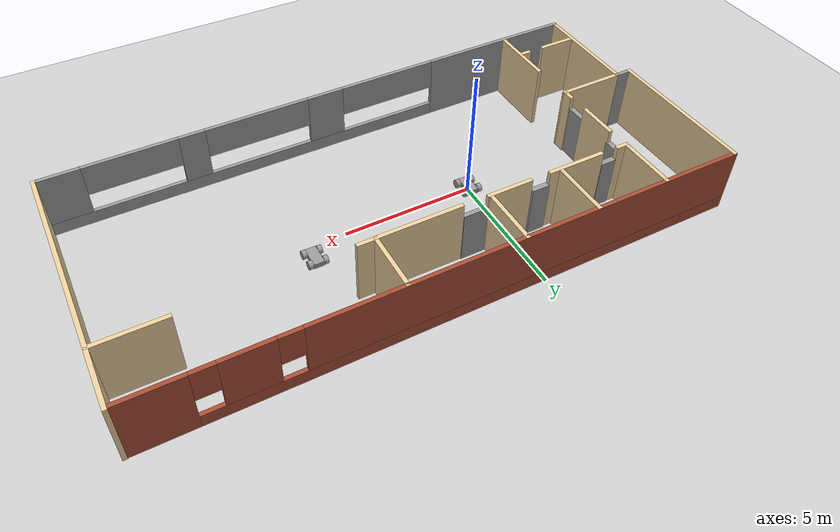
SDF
<sdf version="1.6">
 <world name="default">
  <plugin name="hello" filename="libhello.so"/>
  <light name="sun" type="directional">
   <pose>0 0 10 0 -0 0</pose>
   <diffuse>0.8 0.8 0.8 1</diffuse>
   <specular>0.2 0.2 0.2 1</specular>
   <attenuation>
    <range>1000</range>
    <constant>0.9</constant>
    <linear>0.01</linear>
    <quadratic>0.001</quadratic>
   </attenuation>
   <direction>-0.5 0.1 -0.9</direction>
  </light>
  <model name="ground_plane">
   <static>1</static>
   <link name="link">
    <collision name="collision">
     <geometry><plane><normal>0 0 1</normal><size>100 100</size></plane></geometry>
     <surface>
      <contact><collide_bitmask>65535</collide_bitmask></contact>
      <friction><ode><mu>100</mu><mu2>50</mu2></ode></friction>
     </surface>
    </collision>
    <visual name="visual">
     <cast_shadows>0</cast_shadows>
     <geometry><plane><normal>0 0 1</normal><size>100 100</size></plane></geometry>
     <material>
      <script><uri>file://media/materials/scripts/gazebo.material</uri><name>Gazebo/Grey</name></script>
     </material>
    </visual>
   </link>
  </model>
  <gravity>0 0 -9.8</gravity>
  <magnetic_field>6e-06 2.3e-05 -4.2e-05</magnetic_field>
  <atmosphere type="adiabatic"/>
  <physics name="default_physics" default="0" type="ode">
   <max_step_size>0.001</max_step_size>
   <real_time_factor>1</real_time_factor>
   <real_time_update_rate>1000</real_time_update_rate>
  </physics>
  <scene><ambient>0.4 0.4 0.4 1</ambient><background>0.7 0.7 0.7 1</background><shadows>1</shadows></scene>
  <spherical_coordinates>
   <surface_model>EARTH_WGS84</surface_model>
   <latitude_deg>0</latitude_deg>
   <longitude_deg>0</longitude_deg>
   <elevation>0</elevation>
   <heading_deg>0</heading_deg>
  </spherical_coordinates>
  <model name="model_P1">
   <link name="link_1">
    <pose>-0.004 0.004 0 0 -0 0</pose>
    <inertial>
     <mass>1</mass>
     <inertia>
      <ixx>0.166667</ixx>
      <ixy>0</ixy>
      <ixz>0</ixz>
      <iyy>0.166667</iyy>
      <iyz>0</iyz>
      <izz>0.166667</izz>
     </inertia>
    </inertial>
    <visual name="visual">
     <geometry><box><size>0.4 0.8 0.2</size></box></geometry>
     <material>
      <lighting>1</lighting>
      <script><uri>file://media/materials/scripts/gazebo.material</uri><name>Gazebo/Grey</name></script>
      <shader type="pixel"><normal_map>__default__</normal_map></shader>
      <ambient>0.3 0.3 0.3 1</ambient>
      <diffuse>0.7 0.7 0.7 1</diffuse>
      <specular>0.01 0.01 0.01 1</specular>
      <emissive>0 0 0 1</emissive>
     </material>
    </visual>
    <collision name="collision">
     <geometry><box><size>0.4 0.8 0.2</size></box></geometry>
     <surface>
      <friction>
       <ode><mu>1</mu><mu2>1</mu2><fdir1>0 0 0</fdir1><slip1>0</slip1><slip2>0</slip2></ode>
       <torsional>
        <coefficient>1</coefficient>
        <patch_radius>0</patch_radius>
        <surface_radius>0</surface_radius>
        <use_patch_radius>1</use_patch_radius>
        <ode><slip>0</slip></ode>
       </torsional>
      </friction>
      <bounce><restitution_coefficient>0</restitution_coefficient><threshold>1e+06</threshold></bounce>
      <contact>
       <collide_without_contact>0</collide_without_contact>
       <collide_without_contact_bitmask>1</collide_without_contact_bitmask>
       <collide_bitmask>1</collide_bitmask>
       <ode>
        <soft_cfm>0</soft_cfm>
        <soft_erp>0.2</soft_erp>
        <kp>1e+13</kp>
        <kd>1</kd>
        <max_vel>0.01</max_vel>
        <min_depth>0</min_depth>
       </ode>
       <bullet>
        <split_impulse>1</split_impulse>
        <split_impulse_penetration_threshold>-0.01</split_impulse_penetration_threshold>
        <soft_cfm>0</soft_cfm>
        <soft_erp>0.2</soft_erp>
        <kp>1e+13</kp>
        <kd>1</kd>
       </bullet>
      </contact>
     </surface>
    </collision>
   </link>
   <link name="link_3">
    <pose>0.276 -0.276 0 1.5707 0 1.5707</pose>
    <inertial>
     <mass>1</mass>
     <inertia><ixx>0.145833</ixx><ixy>0</ixy><ixz>0</ixz><iyy>0.145833</iyy><iyz>0</iyz><izz>0.125</izz></inertia>
     <pose>0 0 0.5 1.5707 -0 0</pose>
    </inertial>
    <visual name="visual">
     <geometry><cylinder><radius>0.16</radius><length>0.16</length></cylinder></geometry>
     <material>
      <lighting>1</lighting>
      <script><uri>file://media/materials/scripts/gazebo.material</uri><name>Gazebo/Grey</name></script>
      <shader type="pixel"><normal_map>__default__</normal_map></shader>
      <ambient>0.3 0.3 0.3 1</ambient>
      <diffuse>0.7 0.7 0.7 1</diffuse>
      <specular>0.01 0.01 0.01 1</specular>
      <emissive>0 0 0 1</emissive>
     </material>
    </visual>
    <collision name="collision">
     <geometry><cylinder><radius>0.16</radius><length>0.16</length></cylinder></geometry>
     <surface>
      <friction>
       <ode><mu>1</mu><mu2>1</mu2><fdir1>0 0 0</fdir1><slip1>0</slip1><slip2>0</slip2></ode>
       <torsional>
        <coefficient>1</coefficient>
        <patch_radius>0</patch_radius>
        <surface_radius>0</surface_radius>
        <use_patch_radius>1</use_patch_radius>
        <ode><slip>0</slip></ode>
       </torsional>
      </friction>
      <bounce><restitution_coefficient>0</restitution_coefficient><threshold>1e+06</threshold></bounce>
      <contact>
       <collide_without_contact>0</collide_without_contact>
       <collide_without_contact_bitmask>1</collide_without_contact_bitmask>
       <collide_bitmask>1</collide_bitmask>
       <ode>
        <soft_cfm>0</soft_cfm>
        <soft_erp>0.2</soft_erp>
        <kp>1e+13</kp>
        <kd>1</kd>
        <max_vel>0.01</max_vel>
        <min_depth>0</min_depth>
       </ode>
       <bullet>
        <split_impulse>1</split_impulse>
        <split_impulse_penetration_threshold>-0.01</split_impulse_penetration_threshold>
        <soft_cfm>0</soft_cfm>
        <soft_erp>0.2</soft_erp>
        <kp>1e+13</kp>
        <kd>1</kd>
       </bullet>
      </contact>
     </surface>
    </collision>
   </link>
   <link name="link_3_clone">
    <pose>0.275 0.26 0 1.5707 0 1.5707</pose>
    <inertial>
     <mass>1</mass>
     <inertia><ixx>0.145833</ixx><ixy>0</ixy><ixz>0</ixz><iyy>0.145833</iyy><iyz>0</iyz><izz>0.125</izz></inertia>
     <pose>0 0 0.2 1.5707 1.5707 -0</pose>
    </inertial>
    <visual name="visual">
     <geometry><cylinder><radius>0.16</radius><length>0.16</length></cylinder></geometry>
     <material>
      <lighting>1</lighting>
      <script><uri>file://media/materials/scripts/gazebo.material</uri><name>Gazebo/Grey</name></script>
      <shader type="pixel"><normal_map>__default__</normal_map></shader>
      <ambient>0.3 0.3 0.3 1</ambient>
      <diffuse>0.7 0.7 0.7 1</diffuse>
      <specular>0.01 0.01 0.01 1</specular>
      <emissive>0 0 0 1</emissive>
     </material>
    </visual>
    <collision name="collision">
     <geometry><cylinder><radius>0.16</radius><length>0.16</length></cylinder></geometry>
     <surface>
      <friction>
       <ode><mu>1</mu><mu2>1</mu2><fdir1>0 0 0</fdir1><slip1>0</slip1><slip2>0</slip2></ode>
       <torsional>
        <coefficient>1</coefficient>
        <patch_radius>0</patch_radius>
        <surface_radius>0</surface_radius>
        <use_patch_radius>1</use_patch_radius>
        <ode><slip>0</slip></ode>
       </torsional>
      </friction>
      <bounce><restitution_coefficient>0</restitution_coefficient><threshold>1e+06</threshold></bounce>
      <contact>
       <collide_without_contact>0</collide_without_contact>
       <collide_without_contact_bitmask>1</collide_without_contact_bitmask>
       <collide_bitmask>1</collide_bitmask>
       <ode>
        <soft_cfm>0</soft_cfm>
        <soft_erp>0.2</soft_erp>
        <kp>1e+13</kp>
        <kd>1</kd>
        <max_vel>0.01</max_vel>
        <min_depth>0</min_depth>
       </ode>
       <bullet>
        <split_impulse>1</split_impulse>
        <split_impulse_penetration_threshold>-0.01</split_impulse_penetration_threshold>
        <soft_cfm>0</soft_cfm>
        <soft_erp>0.2</soft_erp>
        <kp>1e+13</kp>
        <kd>1</kd>
       </bullet>
      </contact>
     </surface>
    </collision>
   </link>
   <link name="link_3_clone_clone">
    <pose>-0.285 -0.26 0 1.5707 0 1.5707</pose>
    <inertial>
     <mass>1</mass>
     <inertia><ixx>0.145833</ixx><ixy>0</ixy><ixz>0</ixz><iyy>0.145833</iyy><iyz>0</iyz><izz>0.125</izz></inertia>
     <pose>0 0 0.2 1.5707 1.5707 -0</pose>
    </inertial>
    <visual name="visual">
     <geometry><cylinder><radius>0.16</radius><length>0.16</length></cylinder></geometry>
     <material>
      <lighting>1</lighting>
      <script><uri>file://media/materials/scripts/gazebo.material</uri><name>Gazebo/Grey</name></script>
      <shader type="pixel"><normal_map>__default__</normal_map></shader>
      <ambient>0.3 0.3 0.3 1</ambient>
      <diffuse>0.7 0.7 0.7 1</diffuse>
      <specular>0.01 0.01 0.01 1</specular>
      <emissive>0 0 0 1</emissive>
     </material>
    </visual>
    <collision name="collision">
     <geometry><cylinder><radius>0.16</radius><length>0.16</length></cylinder></geometry>
     <surface>
      <friction>
       <ode><mu>1</mu><mu2>1</mu2><fdir1>0 0 0</fdir1><slip1>0</slip1><slip2>0</slip2></ode>
       <torsional>
        <coefficient>1</coefficient>
        <patch_radius>0</patch_radius>
        <surface_radius>0</surface_radius>
        <use_patch_radius>1</use_patch_radius>
        <ode><slip>0</slip></ode>
       </torsional>
      </friction>
      <bounce><restitution_coefficient>0</restitution_coefficient><threshold>1e+06</threshold></bounce>
      <contact>
       <collide_without_contact>0</collide_without_contact>
       <collide_without_contact_bitmask>1</collide_without_contact_bitmask>
       <collide_bitmask>1</collide_bitmask>
       <ode>
        <soft_cfm>0</soft_cfm>
        <soft_erp>0.2</soft_erp>
        <kp>1e+13</kp>
        <kd>1</kd>
        <max_vel>0.01</max_vel>
        <min_depth>0</min_depth>
       </ode>
       <bullet>
        <split_impulse>1</split_impulse>
        <split_impulse_penetration_threshold>-0.01</split_impulse_penetration_threshold>
        <soft_cfm>0</soft_cfm>
        <soft_erp>0.2</soft_erp>
        <kp>1e+13</kp>
        <kd>1</kd>
       </bullet>
      </contact>
     </surface>
    </collision>
   </link>
   <link name="link_3_clone_clone_0">
    <pose>-0.285 0.26 0 1.56531 -0 1.5707</pose>
    <inertial>
     <mass>1</mass>
     <inertia><ixx>0.145833</ixx><ixy>0</ixy><ixz>0</ixz><iyy>0.145833</iyy><iyz>0</iyz><izz>0.125</izz></inertia>
     <pose>0 0 0.2 1.5707 1.5707 -0</pose>
    </inertial>
    <visual name="visual">
     <geometry><cylinder><radius>0.16</radius><length>0.16</length></cylinder></geometry>
     <material>
      <lighting>1</lighting>
      <script><uri>file://media/materials/scripts/gazebo.material</uri><name>Gazebo/Grey</name></script>
      <shader type="pixel"><normal_map>__default__</normal_map></shader>
      <ambient>0.3 0.3 0.3 1</ambient>
      <diffuse>0.7 0.7 0.7 1</diffuse>
      <specular>0.01 0.01 0.01 1</specular>
      <emissive>0 0 0 1</emissive>
     </material>
    </visual>
    <collision name="collision">
     <geometry><cylinder><radius>0.16</radius><length>0.16</length></cylinder></geometry>
     <surface>
      <friction>
       <ode><mu>1</mu><mu2>1</mu2><fdir1>0 0 0</fdir1><slip1>0</slip1><slip2>0</slip2></ode>
       <torsional>
        <coefficient>1</coefficient>
        <patch_radius>0</patch_radius>
        <surface_radius>0</surface_radius>
        <use_patch_radius>1</use_patch_radius>
        <ode><slip>0</slip></ode>
       </torsional>
      </friction>
      <bounce><restitution_coefficient>0</restitution_coefficient><threshold>1e+06</threshold></bounce>
      <contact>
       <collide_without_contact>0</collide_without_contact>
       <collide_without_contact_bitmask>1</collide_without_contact_bitmask>
       <collide_bitmask>1</collide_bitmask>
       <ode>
        <soft_cfm>0</soft_cfm>
        <soft_erp>0.2</soft_erp>
        <kp>1e+13</kp>
        <kd>1</kd>
        <max_vel>0.01</max_vel>
        <min_depth>0</min_depth>
       </ode>
       <bullet>
        <split_impulse>1</split_impulse>
        <split_impulse_penetration_threshold>-0.01</split_impulse_penetration_threshold>
        <soft_cfm>0</soft_cfm>
        <soft_erp>0.2</soft_erp>
        <kp>1e+13</kp>
        <kd>1</kd>
       </bullet>
      </contact>
     </surface>
    </collision>
   </link>
   <joint name="link_1_JOINT_1" type="revolute">
    <parent>link_1</parent>
    <child>link_3</child>
    <pose>0 0 0 -0.06 0 0</pose>
    <axis>
     <xyz>0 0.01 1</xyz>
     <use_parent_model_frame>0</use_parent_model_frame>
     <limit>
      <lower>-1.79769e+308</lower>
      <upper>1.79769e+308</upper>
      <effort>-1</effort>
      <velocity>-1</velocity>
     </limit>
     <dynamics>
      <spring_reference>0</spring_reference>
      <spring_stiffness>0</spring_stiffness>
      <damping>0</damping>
      <friction>0</friction>
     </dynamics>
    </axis>
    <physics>
     <ode><limit><cfm>0</cfm><erp>0.2</erp></limit><suspension><cfm>0</cfm><erp>0.2</erp></suspension></ode>
    </physics>
   </joint>
   <joint name="link_1_JOINT_2" type="revolute">
    <parent>link_1</parent>
    <child>link_3_clone</child>
    <axis>
     <xyz>0 0 1</xyz>
     <use_parent_model_frame>0</use_parent_model_frame>
     <limit>
      <lower>-1.79769e+308</lower>
      <upper>1.79769e+308</upper>
      <effort>-1</effort>
      <velocity>-1</velocity>
     </limit>
     <dynamics>
      <spring_reference>0</spring_reference>
      <spring_stiffness>0</spring_stiffness>
      <damping>0</damping>
      <friction>0</friction>
     </dynamics>
    </axis>
    <physics>
     <ode><limit><cfm>0</cfm><erp>0.2</erp></limit><suspension><cfm>0</cfm><erp>0.2</erp></suspension></ode>
    </physics>
   </joint>
   <joint name="link_1_JOINT_3" type="revolute">
    <parent>link_1</parent>
    <child>link_3_clone_clone</child>
    <axis>
     <xyz>0 0 1</xyz>
     <use_parent_model_frame>0</use_parent_model_frame>
     <limit>
      <lower>-1.79769e+308</lower>
      <upper>1.79769e+308</upper>
      <effort>-1</effort>
      <velocity>-1</velocity>
     </limit>
     <dynamics>
      <spring_reference>0</spring_reference>
      <spring_stiffness>0</spring_stiffness>
      <damping>0</damping>
      <friction>0</friction>
     </dynamics>
    </axis>
    <physics>
     <ode><limit><cfm>0</cfm><erp>0.2</erp></limit><suspension><cfm>0</cfm><erp>0.2</erp></suspension></ode>
    </physics>
   </joint>
   <joint name="link_1_JOINT_4" type="revolute">
    <parent>link_1</parent>
    <child>link_3_clone_clone_0</child>
    <axis>
     <xyz>0 0 1</xyz>
     <use_parent_model_frame>0</use_parent_model_frame>
     <limit>
      <lower>-1.79769e+308</lower>
      <upper>1.79769e+308</upper>
      <effort>-1</effort>
      <velocity>-1</velocity>
     </limit>
     <dynamics>
      <spring_reference>0</spring_reference>
      <spring_stiffness>0</spring_stiffness>
      <damping>0</damping>
      <friction>0</friction>
     </dynamics>
    </axis>
    <physics>
     <ode><limit><cfm>0</cfm><erp>0.2</erp></limit><suspension><cfm>0</cfm><erp>0.2</erp></suspension></ode>
    </physics>
   </joint>
   <static>0</static>
   <pose>0.004 -0.004 0.2 0 -0 0</pose>
  </model>
  <model name="structureP1">
   <pose>3.27597 0.077317 0 0 -0 0</pose>
   <link name="Door_0">
    <collision name="Door_0_Collision">
     <geometry><box><size>0.733829 0.2 2</size></box></geometry>
     <pose>0 0 1 0 -0 0</pose>
    </collision>
    <visual name="Door_0_Visual">
     <pose>0 0 1 0 -0 0</pose>
     <geometry><box><size>0.733829 0.2 2</size></box></geometry>
     <material>
      <script><uri>file://media/materials/scripts/gazebo.material</uri><name>Gazebo/Grey</name></script>
     </material>
    </visual>
    <pose>-7.86654 0.041822 0 0 -0 1.57283</pose>
   </link>
   <link name="Door_1">
    <collision name="Door_1_Collision">
     <geometry><box><size>0.59486 0.2 2</size></box></geometry>
     <pose>0 0 1 0 -0 0</pose>
    </collision>
    <visual name="Door_1_Visual">
     <pose>0 0 1 0 -0 0</pose>
     <geometry><box><size>0.59486 0.2 2</size></box></geometry>
     <material>
      <script><uri>file://media/materials/scripts/gazebo.material</uri><name>Gazebo/Grey</name></script>
     </material>
    </visual>
    <pose>-7.14463 2.69769 0 0 -0 0</pose>
   </link>
   <link name="Door_2">
    <collision name="Door_2_Collision">
     <geometry><box><size>0.676231 0.2 2</size></box></geometry>
     <pose>0 0 1 0 -0 0</pose>
    </collision>
    <visual name="Door_2_Visual">
     <pose>0 0 1 0 -0 0</pose>
     <geometry><box><size>0.676231 0.2 2</size></box></geometry>
     <material>
      <script><uri>file://media/materials/scripts/gazebo.material</uri><name>Gazebo/Grey</name></script>
     </material>
    </visual>
    <pose>-4.28798 2.71288 0 0 -0 0</pose>
   </link>
   <link name="Door_3">
    <collision name="Door_3_Collision">
     <geometry><box><size>0.9 0.17 2</size></box></geometry>
     <pose>0 0 1 0 -0 0</pose>
    </collision>
    <visual name="Door_3_Visual">
     <pose>0 0 1 0 -0 0</pose>
     <geometry><box><size>0.9 0.17 2</size></box></geometry>
     <material>
      <script><uri>file://media/materials/scripts/gazebo.material</uri><name>Gazebo/Grey</name></script>
     </material>
    </visual>
    <pose>-1.70955 2.70271 0 0 -0 0</pose>
   </link>
   <link name="Door_4">
    <collision name="Door_4_Collision">
     <geometry><box><size>0.787358 0.2 2</size></box></geometry>
     <pose>0 0 1 0 -0 0</pose>
    </collision>
    <visual name="Door_4_Visual">
     <pose>0 0 1 0 -0 0</pose>
     <geometry><box><size>0.787358 0.2 2</size></box></geometry>
     <material>
      <script><uri>file://media/materials/scripts/gazebo.material</uri><name>Gazebo/Grey</name></script>
     </material>
    </visual>
    <pose>-7.84405 2.2616 0 0 0 -1.55798</pose>
   </link>
   <link name="Wall_0">
    <pose>-0.049796 4.83077 0 0 -0 3.14159</pose>
    <visual name="Wall_0_Visual_0">
     <pose>-9.78293 0 1.25 0 -0 0</pose>
     <geometry><box><size>2.18414 0.15 2.5</size></box></geometry>
     <material>
      <script><uri>file://media/materials/scripts/gazebo.material</uri><name>Gazebo/Bricks</name></script>
      <ambient>1 1 1 1</ambient>
     </material>
     <meta><layer>0</layer></meta>
    </visual>
    <collision name="Wall_0_Collision_0">
     <geometry><box><size>2.18414 0.15 2.5</size></box></geometry>
     <pose>-9.78293 0 1.25 0 -0 0</pose>
    </collision>
    <visual name="Wall_0_Visual_1">
     <pose>1.09207 0 0.25 0 -0 0</pose>
     <geometry><box><size>19.5659 0.15 0.5</size></box></geometry>
     <material>
      <script><uri>file://media/materials/scripts/gazebo.material</uri><name>Gazebo/Bricks</name></script>
      <ambient>1 1 1 1</ambient>
     </material>
     <meta><layer>0</layer></meta>
    </visual>
    <collision name="Wall_0_Collision_1">
     <geometry><box><size>19.5659 0.15 0.5</size></box></geometry>
     <pose>1.09207 0 0.25 0 -0 0</pose>
    </collision>
    <visual name="Wall_0_Visual_2">
     <pose>-7.00793 0 1.5 0 -0 0</pose>
     <geometry><box><size>1.76586 0.15 2</size></box></geometry>
     <material>
      <script><uri>file://media/materials/scripts/gazebo.material</uri><name>Gazebo/Bricks</name></script>
      <ambient>1 1 1 1</ambient>
     </material>
     <meta><layer>0</layer></meta>
    </visual>
    <collision name="Wall_0_Collision_2">
     <geometry><box><size>1.76586 0.15 2</size></box></geometry>
     <pose>-7.00793 0 1.5 0 -0 0</pose>
    </collision>
    <visual name="Wall_0_Visual_3">
     <pose>2.775 0 1.5 0 -0 0</pose>
     <geometry><box><size>16.2 0.15 2</size></box></geometry>
     <material>
      <script><uri>file://media/materials/scripts/gazebo.material</uri><name>Gazebo/Bricks</name></script>
      <ambient>1 1 1 1</ambient>
     </material>
     <meta><layer>0</layer></meta>
    </visual>
    <collision name="Wall_0_Collision_3">
     <geometry><box><size>16.2 0.15 2</size></box></geometry>
     <pose>2.775 0 1.5 0 -0 0</pose>
    </collision>
    <visual name="Wall_0_Visual_4">
     <pose>-8.29086 0 1.9 0 -0 0</pose>
     <geometry><box><size>0.8 0.15 1.2</size></box></geometry>
     <material>
      <script><uri>file://media/materials/scripts/gazebo.material</uri><name>Gazebo/Bricks</name></script>
      <ambient>1 1 1 1</ambient>
     </material>
     <meta><layer>0</layer></meta>
    </visual>
    <collision name="Wall_0_Collision_4">
     <geometry><box><size>0.8 0.15 1.2</size></box></geometry>
     <pose>-8.29086 0 1.9 0 -0 0</pose>
    </collision>
    <visual name="Wall_0_Visual_5">
     <pose>-5.72499 0 1.9 0 -0 0</pose>
     <geometry><box><size>0.8 0.15 1.2</size></box></geometry>
     <material>
      <script><uri>file://media/materials/scripts/gazebo.material</uri><name>Gazebo/Bricks</name></script>
      <ambient>1 1 1 1</ambient>
     </material>
     <meta><layer>0</layer></meta>
    </visual>
    <collision name="Wall_0_Collision_5">
     <geometry><box><size>0.8 0.15 1.2</size></box></geometry>
     <pose>-5.72499 0 1.9 0 -0 0</pose>
    </collision>
   </link>
   <link name="Wall_1">
    <collision name="Wall_1_Collision">
     <geometry><box><size>5.71967 0.15 2.5</size></box></geometry>
     <pose>0 0 1.25 0 -0 0</pose>
    </collision>
    <visual name="Wall_1_Visual">
     <pose>0 0 1.25 0 -0 0</pose>
     <geometry><box><size>5.71967 0.15 2.5</size></box></geometry>
     <material>
      <script><uri>file://media/materials/scripts/gazebo.material</uri><name>Gazebo/Grey</name></script>
      <ambient>0.921569 0.807843 0.615686 1</ambient>
     </material>
     <meta><layer>0</layer></meta>
    </visual>
    <pose>-10.8498 2.03077 0 0 0 -1.56533</pose>
   </link>
   <link name="Wall_11">
    <collision name="Wall_11_Collision">
     <geometry><box><size>0.5 0.15 2.5</size></box></geometry>
     <pose>0 0 1.25 0 -0 0</pose>
    </collision>
    <visual name="Wall_11_Visual">
     <pose>0 0 1.25 0 -0 0</pose>
     <geometry><box><size>0.5 0.15 2.5</size></box></geometry>
     <material>
      <script><uri>file://media/materials/scripts/gazebo.material</uri><name>Gazebo/Grey</name></script>
      <ambient>0.921569 0.807843 0.615686 1</ambient>
     </material>
     <meta><layer>0</layer></meta>
    </visual>
    <pose>-7.94299 -3.62813 0 0 -0 0</pose>
   </link>
   <link name="Wall_13">
    <collision name="Wall_13_Collision">
     <geometry><box><size>2.58183 0.15 2.5</size></box></geometry>
     <pose>0 0 1.25 0 -0 0</pose>
    </collision>
    <visual name="Wall_13_Visual">
     <pose>0 0 1.25 0 -0 0</pose>
     <geometry><box><size>2.58183 0.15 2.5</size></box></geometry>
     <material>
      <script><uri>file://media/materials/scripts/gazebo.material</uri><name>Gazebo/Grey</name></script>
      <ambient>0.921569 0.807843 0.615686 1</ambient>
     </material>
     <meta><layer>0</layer></meta>
    </visual>
    <pose>-9.01867 -0.748904 0 0 -0 0.004206</pose>
   </link>
   <link name="Wall_15">
    <collision name="Wall_15_Collision">
     <geometry><box><size>0.5 0.15 2.5</size></box></geometry>
     <pose>0 0 1.25 0 -0 0</pose>
    </collision>
    <visual name="Wall_15_Visual">
     <pose>0 0 1.25 0 -0 0</pose>
     <geometry><box><size>0.5 0.15 2.5</size></box></geometry>
     <material>
      <script><uri>file://media/materials/scripts/gazebo.material</uri><name>Gazebo/Grey</name></script>
      <ambient>0.921569 0.807843 0.615686 1</ambient>
     </material>
     <meta><layer>0</layer></meta>
    </visual>
    <pose>-7.80276 -0.579018 0 0 -0 1.5708</pose>
   </link>
   <link name="Wall_17">
    <collision name="Wall_17_Collision">
     <geometry><box><size>1.5 0.15 2.5</size></box></geometry>
     <pose>0 0 1.25 0 -0 0</pose>
    </collision>
    <visual name="Wall_17_Visual">
     <pose>0 0 1.25 0 -0 0</pose>
     <geometry><box><size>1.5 0.15 2.5</size></box></geometry>
     <material>
      <script><uri>file://media/materials/scripts/gazebo.material</uri><name>Gazebo/Grey</name></script>
      <ambient>0.921569 0.807843 0.615686 1</ambient>
     </material>
     <meta><layer>0</layer></meta>
    </visual>
    <pose>-7.82409 1.16553 0 0 -0 1.5708</pose>
   </link>
   <link name="Wall_19">
    <collision name="Wall_19_Collision">
     <geometry><box><size>2.25 0.15 2.5</size></box></geometry>
     <pose>0 0 1.25 0 -0 0</pose>
    </collision>
    <visual name="Wall_19_Visual">
     <pose>0 0 1.25 0 -0 0</pose>
     <geometry><box><size>2.25 0.15 2.5</size></box></geometry>
     <material>
      <script><uri>file://media/materials/scripts/gazebo.material</uri><name>Gazebo/Grey</name></script>
      <ambient>0.921569 0.807843 0.615686 1</ambient>
     </material>
     <meta><layer>0</layer></meta>
    </visual>
    <pose>-7.86075 3.75644 0 0 -0 1.5708</pose>
   </link>
   <link name="Wall_2">
    <collision name="Wall_2_Collision">
     <geometry><box><size>0.75 0.15 2.5</size></box></geometry>
     <pose>0 0 1.25 0 -0 0</pose>
    </collision>
    <visual name="Wall_2_Visual">
     <pose>0 0 1.25 0 -0 0</pose>
     <geometry><box><size>0.75 0.15 2.5</size></box></geometry>
     <material>
      <script><uri>file://media/materials/scripts/gazebo.material</uri><name>Gazebo/Grey</name></script>
      <ambient>1 1 1 1</ambient>
     </material>
     <meta><layer>0</layer></meta>
    </visual>
    <pose>-10.5346 -0.754018 0 0 -0 0</pose>
   </link>
   <link name="Wall_21">
    <collision name="Wall_21_Collision">
     <geometry><box><size>0.5 0.15 2.5</size></box></geometry>
     <pose>0 0 1.25 0 -0 0</pose>
    </collision>
    <visual name="Wall_21_Visual">
     <pose>0 0 1.25 0 -0 0</pose>
     <geometry><box><size>0.5 0.15 2.5</size></box></geometry>
     <material>
      <script><uri>file://media/materials/scripts/gazebo.material</uri><name>Gazebo/Grey</name></script>
      <ambient>0.921569 0.807843 0.615686 1</ambient>
     </material>
     <meta><layer>0</layer></meta>
    </visual>
    <pose>-7.68575 2.70644 0 0 -0 0</pose>
   </link>
   <link name="Wall_24">
    <collision name="Wall_24_Collision">
     <geometry><box><size>2.25 0.15 2.5</size></box></geometry>
     <pose>0 0 1.25 0 -0 0</pose>
    </collision>
    <visual name="Wall_24_Visual">
     <pose>0 0 1.25 0 -0 0</pose>
     <geometry><box><size>2.25 0.15 2.5</size></box></geometry>
     <material>
      <script><uri>file://media/materials/scripts/gazebo.material</uri><name>Gazebo/Grey</name></script>
      <ambient>0.921569 0.807843 0.615686 1</ambient>
     </material>
     <meta><layer>0</layer></meta>
    </visual>
    <pose>-5.73101 2.69769 0 0 -0 0</pose>
   </link>
   <link name="Wall_28">
    <collision name="Wall_28_Collision">
     <geometry><box><size>1.75 0.15 2.5</size></box></geometry>
     <pose>0 0 1.25 0 -0 0</pose>
    </collision>
    <visual name="Wall_28_Visual">
     <pose>0 0 1.25 0 -0 0</pose>
     <geometry><box><size>1.75 0.15 2.5</size></box></geometry>
     <material>
      <script><uri>file://media/materials/scripts/gazebo.material</uri><name>Gazebo/Grey</name></script>
      <ambient>0.921569 0.807843 0.615686 1</ambient>
     </material>
     <meta><layer>0</layer></meta>
    </visual>
    <pose>-3.02903 2.70644 0 0 -0 0</pose>
   </link>
   <link name="Wall_3">
    <collision name="Wall_3_Collision">
     <geometry><box><size>4.25 0.15 2.5</size></box></geometry>
     <pose>0 0 1.25 0 -0 0</pose>
    </collision>
    <visual name="Wall_3_Visual">
     <pose>0 0 1.25 0 -0 0</pose>
     <geometry><box><size>4.25 0.15 2.5</size></box></geometry>
     <material>
      <script><uri>file://media/materials/scripts/gazebo.material</uri><name>Gazebo/Grey</name></script>
      <ambient>0.921569 0.807843 0.615686 1</ambient>
     </material>
     <meta><layer>0</layer></meta>
    </visual>
    <pose>-10.2346 -2.80402 0 0 0 -1.5708</pose>
   </link>
   <link name="Wall_32">
    <collision name="Wall_32_Collision">
     <geometry><box><size>2.5 0.15 2.5</size></box></geometry>
     <pose>0 0 1.25 0 -0 0</pose>
    </collision>
    <visual name="Wall_32_Visual">
     <pose>0 0 1.25 0 -0 0</pose>
     <geometry><box><size>2.5 0.15 2.5</size></box></geometry>
     <material>
      <script><uri>file://media/materials/scripts/gazebo.material</uri><name>Gazebo/Grey</name></script>
      <ambient>0.921569 0.807843 0.615686 1</ambient>
     </material>
     <meta><layer>0</layer></meta>
    </visual>
    <pose>9.66593 2.70483 0 0 -0 0</pose>
   </link>
   <link name="Wall_39">
    <collision name="Wall_39_Collision">
     <geometry><box><size>3.25 0.15 2.5</size></box></geometry>
     <pose>0 0 1.25 0 -0 0</pose>
    </collision>
    <visual name="Wall_39_Visual">
     <pose>0 0 1.25 0 -0 0</pose>
     <geometry><box><size>3.25 0.15 2.5</size></box></geometry>
     <material>
      <script><uri>file://media/materials/scripts/gazebo.material</uri><name>Gazebo/Grey</name></script>
      <ambient>0.921569 0.807843 0.615686 1</ambient>
     </material>
     <meta><layer>0</layer></meta>
    </visual>
    <pose>0.371789 2.68623 0 0 -0 0</pose>
   </link>
   <link name="Wall_4">
    <pose>0.315413 -4.85402 0 0 -0 0</pose>
    <visual name="Wall_4_Visual_0">
     <pose>-7.63578 0 1.25 0 -0 0</pose>
     <geometry><box><size>5.97845 0.15 2.5</size></box></geometry>
     <material>
      <script><uri>file://media/materials/scripts/gazebo.material</uri><name>Gazebo/Grey</name></script>
      <ambient>1 1 1 1</ambient>
     </material>
     <meta><layer>0</layer></meta>
    </visual>
    <collision name="Wall_4_Collision_0">
     <geometry><box><size>5.97845 0.15 2.5</size></box></geometry>
     <pose>-7.63578 0 1.25 0 -0 0</pose>
    </collision>
    <visual name="Wall_4_Visual_1">
     <pose>2.98922 0 0.25 0 -0 0</pose>
     <geometry><box><size>15.2716 0.15 0.5</size></box></geometry>
     <material>
      <script><uri>file://media/materials/scripts/gazebo.material</uri><name>Gazebo/Grey</name></script>
      <ambient>1 1 1 1</ambient>
     </material>
     <meta><layer>0</layer></meta>
    </visual>
    <collision name="Wall_4_Collision_1">
     <geometry><box><size>15.2716 0.15 0.5</size></box></geometry>
     <pose>2.98922 0 0.25 0 -0 0</pose>
    </collision>
    <visual name="Wall_4_Visual_2">
     <pose>-0.07985 0 1.5 0 -0 0</pose>
     <geometry><box><size>1.41641 0.15 2</size></box></geometry>
     <material>
      <script><uri>file://media/materials/scripts/gazebo.material</uri><name>Gazebo/Grey</name></script>
      <ambient>1 1 1 1</ambient>
     </material>
     <meta><layer>0</layer></meta>
    </visual>
    <collision name="Wall_4_Collision_2">
     <geometry><box><size>1.41641 0.15 2</size></box></geometry>
     <pose>-0.07985 0 1.5 0 -0 0</pose>
    </collision>
    <visual name="Wall_4_Visual_3">
     <pose>5.09381 0 1.5 0 -0 0</pose>
     <geometry><box><size>0.983588 0.15 2</size></box></geometry>
     <material>
      <script><uri>file://media/materials/scripts/gazebo.material</uri><name>Gazebo/Grey</name></script>
      <ambient>1 1 1 1</ambient>
     </material>
     <meta><layer>0</layer></meta>
    </visual>
    <collision name="Wall_4_Collision_3">
     <geometry><box><size>0.983588 0.15 2</size></box></geometry>
     <pose>5.09381 0 1.5 0 -0 0</pose>
    </collision>
    <visual name="Wall_4_Visual_4">
     <pose>9.81177 0 1.5 0 -0 0</pose>
     <geometry><box><size>1.62645 0.15 2</size></box></geometry>
     <material>
      <script><uri>file://media/materials/scripts/gazebo.material</uri><name>Gazebo/Grey</name></script>
      <ambient>1 1 1 1</ambient>
     </material>
     <meta><layer>0</layer></meta>
    </visual>
    <collision name="Wall_4_Collision_4">
     <geometry><box><size>1.62645 0.15 2</size></box></geometry>
     <pose>9.81177 0 1.5 0 -0 0</pose>
    </collision>
    <visual name="Wall_4_Visual_5">
     <pose>-2.71731 0 1.9 0 -0 0</pose>
     <geometry><box><size>3.8585 0.15 1.2</size></box></geometry>
     <material>
      <script><uri>file://media/materials/scripts/gazebo.material</uri><name>Gazebo/Grey</name></script>
      <ambient>1 1 1 1</ambient>
     </material>
     <meta><layer>0</layer></meta>
    </visual>
    <collision name="Wall_4_Collision_5">
     <geometry><box><size>3.8585 0.15 1.2</size></box></geometry>
     <pose>-2.71731 0 1.9 0 -0 0</pose>
    </collision>
    <visual name="Wall_4_Visual_6">
     <pose>2.61519 0 1.9 0 -0 0</pose>
     <geometry><box><size>3.97366 0.15 1.2</size></box></geometry>
     <material>
      <script><uri>file://media/materials/scripts/gazebo.material</uri><name>Gazebo/Grey</name></script>
      <ambient>1 1 1 1</ambient>
     </material>
     <meta><layer>0</layer></meta>
    </visual>
    <collision name="Wall_4_Collision_6">
     <geometry><box><size>3.97366 0.15 1.2</size></box></geometry>
     <pose>2.61519 0 1.9 0 -0 0</pose>
    </collision>
    <visual name="Wall_4_Visual_7">
     <pose>7.29208 0 1.9 0 -0 0</pose>
     <geometry><box><size>3.41294 0.15 1.2</size></box></geometry>
     <material>
      <script><uri>file://media/materials/scripts/gazebo.material</uri><name>Gazebo/Grey</name></script>
      <ambient>1 1 1 1</ambient>
     </material>
     <meta><layer>0</layer></meta>
    </visual>
    <collision name="Wall_4_Collision_7">
     <geometry><box><size>3.41294 0.15 1.2</size></box></geometry>
     <pose>7.29208 0 1.9 0 -0 0</pose>
    </collision>
   </link>
   <link name="Wall_42">
    <collision name="Wall_42_Collision">
     <geometry><box><size>2.25 0.15 2.5</size></box></geometry>
     <pose>0 0 1.25 0 -0 0</pose>
    </collision>
    <visual name="Wall_42_Visual">
     <pose>0 0 1.25 0 -0 0</pose>
     <geometry><box><size>2.25 0.15 2.5</size></box></geometry>
     <material>
      <script><uri>file://media/materials/scripts/gazebo.material</uri><name>Gazebo/Grey</name></script>
      <ambient>0.921569 0.807843 0.615686 1</ambient>
     </material>
     <meta><layer>0</layer></meta>
    </visual>
    <pose>-5.06371 3.76248 0 0 0 -1.5708</pose>
   </link>
   <link name="Wall_44">
    <collision name="Wall_44_Collision">
     <geometry><box><size>2.25 0.15 2.5</size></box></geometry>
     <pose>0 0 1.25 0 -0 0</pose>
    </collision>
    <visual name="Wall_44_Visual">
     <pose>0 0 1.25 0 -0 0</pose>
     <geometry><box><size>2.25 0.15 2.5</size></box></geometry>
     <material>
      <script><uri>file://media/materials/scripts/gazebo.material</uri><name>Gazebo/Grey</name></script>
      <ambient>0.921569 0.807843 0.615686 1</ambient>
     </material>
     <meta><layer>0</layer></meta>
    </visual>
    <pose>-2.28158 3.77586 0 0 0 -1.5708</pose>
   </link>
   <link name="Wall_46">
    <collision name="Wall_46_Collision">
     <geometry><box><size>2.25 0.15 2.5</size></box></geometry>
     <pose>0 0 1.25 0 -0 0</pose>
    </collision>
    <visual name="Wall_46_Visual">
     <pose>0 0 1.25 0 -0 0</pose>
     <geometry><box><size>2.25 0.15 2.5</size></box></geometry>
     <material>
      <script><uri>file://media/materials/scripts/gazebo.material</uri><name>Gazebo/Grey</name></script>
      <ambient>0.921569 0.807843 0.615686 1</ambient>
     </material>
     <meta><layer>0</layer></meta>
    </visual>
    <pose>1.93613 3.7491 0 0 0 -1.5708</pose>
   </link>
   <link name="Wall_48">
    <collision name="Wall_48_Collision">
     <geometry><box><size>0.75 0.15 2.5</size></box></geometry>
     <pose>0 0 1.25 0 -0 0</pose>
    </collision>
    <visual name="Wall_48_Visual">
     <pose>0 0 1.25 0 -0 0</pose>
     <geometry><box><size>0.75 0.15 2.5</size></box></geometry>
     <material>
      <script><uri>file://media/materials/scripts/gazebo.material</uri><name>Gazebo/Grey</name></script>
      <ambient>0.921569 0.807843 0.615686 1</ambient>
     </material>
     <meta><layer>0</layer></meta>
    </visual>
    <pose>2.23613 2.6991 0 0 -0 0</pose>
   </link>
   <link name="Wall_5">
    <collision name="Wall_5_Collision">
     <geometry><box><size>9.85804 0.15 2.5</size></box></geometry>
     <pose>0 0 1.25 0 -0 0</pose>
    </collision>
    <visual name="Wall_5_Visual">
     <pose>0 0 1.25 0 -0 0</pose>
     <geometry><box><size>9.85804 0.15 2.5</size></box></geometry>
     <material>
      <script><uri>file://media/materials/scripts/gazebo.material</uri><name>Gazebo/Grey</name></script>
      <ambient>0.921569 0.807843 0.615686 1</ambient>
     </material>
     <meta><layer>0</layer></meta>
    </visual>
    <pose>10.8654 0 0 0 -0 1.5708</pose>
   </link>
   <link name="Wall_7">
    <collision name="Wall_7_Collision">
     <geometry><box><size>2.5 0.15 2.5</size></box></geometry>
     <pose>0 0 1.25 0 -0 0</pose>
    </collision>
    <visual name="Wall_7_Visual">
     <pose>0 0 1.25 0 -0 0</pose>
     <geometry><box><size>2.5 0.15 2.5</size></box></geometry>
     <material>
      <script><uri>file://media/materials/scripts/gazebo.material</uri><name>Gazebo/Grey</name></script>
      <ambient>0.921569 0.807843 0.615686 1</ambient>
     </material>
     <meta><layer>0</layer></meta>
    </visual>
    <pose>-7.7222 -3.53861 0 0 0 -1.5708</pose>
   </link>
   <link name="Wall_9">
    <collision name="Wall_9_Collision">
     <geometry><box><size>1.5 0.15 2.5</size></box></geometry>
     <pose>0 0 1.25 0 -0 0</pose>
    </collision>
    <visual name="Wall_9_Visual">
     <pose>0 0 1.25 0 -0 0</pose>
     <geometry><box><size>1.5 0.15 2.5</size></box></geometry>
     <material>
      <script><uri>file://media/materials/scripts/gazebo.material</uri><name>Gazebo/Grey</name></script>
      <ambient>0.921569 0.807843 0.615686 1</ambient>
     </material>
     <meta><layer>0</layer></meta>
    </visual>
    <pose>-9.48851 -3.62813 0 0 -0 0</pose>
   </link>
   <static>1</static>
  </model>
  <model name="model_P1_clone">
   <link name="link_1">
    <pose>-0.004 0.004 0 0 -0 0</pose>
    <inertial>
     <mass>1</mass>
     <inertia>
      <ixx>0.166667</ixx>
      <ixy>0</ixy>
      <ixz>0</ixz>
      <iyy>0.166667</iyy>
      <iyz>0</iyz>
      <izz>0.166667</izz>
     </inertia>
    </inertial>
    <visual name="visual">
     <geometry><box><size>0.4 0.8 0.2</size></box></geometry>
     <material>
      <lighting>1</lighting>
      <script><uri>file://media/materials/scripts/gazebo.material</uri><name>Gazebo/Grey</name></script>
      <shader type="pixel"><normal_map>__default__</normal_map></shader>
      <ambient>0.3 0.3 0.3 1</ambient>
      <diffuse>0.7 0.7 0.7 1</diffuse>
      <specular>0.01 0.01 0.01 1</specular>
      <emissive>0 0 0 1</emissive>
     </material>
    </visual>
    <collision name="collision">
     <geometry><box><size>0.4 0.8 0.2</size></box></geometry>
     <surface>
      <friction>
       <ode><mu>1</mu><mu2>1</mu2><fdir1>0 0 0</fdir1><slip1>0</slip1><slip2>0</slip2></ode>
       <torsional>
        <coefficient>1</coefficient>
        <patch_radius>0</patch_radius>
        <surface_radius>0</surface_radius>
        <use_patch_radius>1</use_patch_radius>
        <ode><slip>0</slip></ode>
       </torsional>
      </friction>
      <bounce><restitution_coefficient>0</restitution_coefficient><threshold>1e+06</threshold></bounce>
      <contact>
       <collide_without_contact>0</collide_without_contact>
       <collide_without_contact_bitmask>1</collide_without_contact_bitmask>
       <collide_bitmask>1</collide_bitmask>
       <ode>
        <soft_cfm>0</soft_cfm>
        <soft_erp>0.2</soft_erp>
        <kp>1e+13</kp>
        <kd>1</kd>
        <max_vel>0.01</max_vel>
        <min_depth>0</min_depth>
       </ode>
       <bullet>
        <split_impulse>1</split_impulse>
        <split_impulse_penetration_threshold>-0.01</split_impulse_penetration_threshold>
        <soft_cfm>0</soft_cfm>
        <soft_erp>0.2</soft_erp>
        <kp>1e+13</kp>
        <kd>1</kd>
       </bullet>
      </contact>
     </surface>
    </collision>
   </link>
   <link name="link_3">
    <pose>0.276 -0.276 0 1.5707 0 1.5707</pose>
    <inertial>
     <mass>1</mass>
     <inertia><ixx>0.145833</ixx><ixy>0</ixy><ixz>0</ixz><iyy>0.145833</iyy><iyz>0</iyz><izz>0.125</izz></inertia>
     <pose>0 0 0.5 1.5707 -0 0</pose>
    </inertial>
    <visual name="visual">
     <geometry><cylinder><radius>0.16</radius><length>0.16</length></cylinder></geometry>
     <material>
      <lighting>1</lighting>
      <script><uri>file://media/materials/scripts/gazebo.material</uri><name>Gazebo/Grey</name></script>
      <shader type="pixel"><normal_map>__default__</normal_map></shader>
      <ambient>0.3 0.3 0.3 1</ambient>
      <diffuse>0.7 0.7 0.7 1</diffuse>
      <specular>0.01 0.01 0.01 1</specular>
      <emissive>0 0 0 1</emissive>
     </material>
    </visual>
    <collision name="collision">
     <geometry><cylinder><radius>0.16</radius><length>0.16</length></cylinder></geometry>
     <surface>
      <friction>
       <ode><mu>1</mu><mu2>1</mu2><fdir1>0 0 0</fdir1><slip1>0</slip1><slip2>0</slip2></ode>
       <torsional>
        <coefficient>1</coefficient>
        <patch_radius>0</patch_radius>
        <surface_radius>0</surface_radius>
        <use_patch_radius>1</use_patch_radius>
        <ode><slip>0</slip></ode>
       </torsional>
      </friction>
      <bounce><restitution_coefficient>0</restitution_coefficient><threshold>1e+06</threshold></bounce>
      <contact>
       <collide_without_contact>0</collide_without_contact>
       <collide_without_contact_bitmask>1</collide_without_contact_bitmask>
       <collide_bitmask>1</collide_bitmask>
       <ode>
        <soft_cfm>0</soft_cfm>
        <soft_erp>0.2</soft_erp>
        <kp>1e+13</kp>
        <kd>1</kd>
        <max_vel>0.01</max_vel>
        <min_depth>0</min_depth>
       </ode>
       <bullet>
        <split_impulse>1</split_impulse>
        <split_impulse_penetration_threshold>-0.01</split_impulse_penetration_threshold>
        <soft_cfm>0</soft_cfm>
        <soft_erp>0.2</soft_erp>
        <kp>1e+13</kp>
        <kd>1</kd>
       </bullet>
      </contact>
     </surface>
    </collision>
   </link>
   <link name="link_3_clone">
    <pose>0.275 0.26 0 1.5707 0 1.5707</pose>
    <inertial>
     <mass>1</mass>
     <inertia><ixx>0.145833</ixx><ixy>0</ixy><ixz>0</ixz><iyy>0.145833</iyy><iyz>0</iyz><izz>0.125</izz></inertia>
     <pose>0 0 0.2 1.5707 1.5707 -0</pose>
    </inertial>
    <visual name="visual">
     <geometry><cylinder><radius>0.16</radius><length>0.16</length></cylinder></geometry>
     <material>
      <lighting>1</lighting>
      <script><uri>file://media/materials/scripts/gazebo.material</uri><name>Gazebo/Grey</name></script>
      <shader type="pixel"><normal_map>__default__</normal_map></shader>
      <ambient>0.3 0.3 0.3 1</ambient>
      <diffuse>0.7 0.7 0.7 1</diffuse>
      <specular>0.01 0.01 0.01 1</specular>
      <emissive>0 0 0 1</emissive>
     </material>
    </visual>
    <collision name="collision">
     <geometry><cylinder><radius>0.16</radius><length>0.16</length></cylinder></geometry>
     <surface>
      <friction>
       <ode><mu>1</mu><mu2>1</mu2><fdir1>0 0 0</fdir1><slip1>0</slip1><slip2>0</slip2></ode>
       <torsional>
        <coefficient>1</coefficient>
        <patch_radius>0</patch_radius>
        <surface_radius>0</surface_radius>
        <use_patch_radius>1</use_patch_radius>
        <ode><slip>0</slip></ode>
       </torsional>
      </friction>
      <bounce><restitution_coefficient>0</restitution_coefficient><threshold>1e+06</threshold></bounce>
      <contact>
       <collide_without_contact>0</collide_without_contact>
       <collide_without_contact_bitmask>1</collide_without_contact_bitmask>
       <collide_bitmask>1</collide_bitmask>
       <ode>
        <soft_cfm>0</soft_cfm>
        <soft_erp>0.2</soft_erp>
        <kp>1e+13</kp>
        <kd>1</kd>
        <max_vel>0.01</max_vel>
        <min_depth>0</min_depth>
       </ode>
       <bullet>
        <split_impulse>1</split_impulse>
        <split_impulse_penetration_threshold>-0.01</split_impulse_penetration_threshold>
        <soft_cfm>0</soft_cfm>
        <soft_erp>0.2</soft_erp>
        <kp>1e+13</kp>
        <kd>1</kd>
       </bullet>
      </contact>
     </surface>
    </collision>
   </link>
   <link name="link_3_clone_clone">
    <pose>-0.285 -0.26 0 1.5707 0 1.5707</pose>
    <inertial>
     <mass>1</mass>
     <inertia><ixx>0.145833</ixx><ixy>0</ixy><ixz>0</ixz><iyy>0.145833</iyy><iyz>0</iyz><izz>0.125</izz></inertia>
     <pose>0 0 0.2 1.5707 1.5707 -0</pose>
    </inertial>
    <visual name="visual">
     <geometry><cylinder><radius>0.16</radius><length>0.16</length></cylinder></geometry>
     <material>
      <lighting>1</lighting>
      <script><uri>file://media/materials/scripts/gazebo.material</uri><name>Gazebo/Grey</name></script>
      <shader type="pixel"><normal_map>__default__</normal_map></shader>
      <ambient>0.3 0.3 0.3 1</ambient>
      <diffuse>0.7 0.7 0.7 1</diffuse>
      <specular>0.01 0.01 0.01 1</specular>
      <emissive>0 0 0 1</emissive>
     </material>
    </visual>
    <collision name="collision">
     <geometry><cylinder><radius>0.16</radius><length>0.16</length></cylinder></geometry>
     <surface>
      <friction>
       <ode><mu>1</mu><mu2>1</mu2><fdir1>0 0 0</fdir1><slip1>0</slip1><slip2>0</slip2></ode>
       <torsional>
        <coefficient>1</coefficient>
        <patch_radius>0</patch_radius>
        <surface_radius>0</surface_radius>
        <use_patch_radius>1</use_patch_radius>
        <ode><slip>0</slip></ode>
       </torsional>
      </friction>
      <bounce><restitution_coefficient>0</restitution_coefficient><threshold>1e+06</threshold></bounce>
      <contact>
       <collide_without_contact>0</collide_without_contact>
       <collide_without_contact_bitmask>1</collide_without_contact_bitmask>
       <collide_bitmask>1</collide_bitmask>
       <ode>
        <soft_cfm>0</soft_cfm>
        <soft_erp>0.2</soft_erp>
        <kp>1e+13</kp>
        <kd>1</kd>
        <max_vel>0.01</max_vel>
        <min_depth>0</min_depth>
       </ode>
       <bullet>
        <split_impulse>1</split_impulse>
        <split_impulse_penetration_threshold>-0.01</split_impulse_penetration_threshold>
        <soft_cfm>0</soft_cfm>
        <soft_erp>0.2</soft_erp>
        <kp>1e+13</kp>
        <kd>1</kd>
       </bullet>
      </contact>
     </surface>
    </collision>
   </link>
   <link name="link_3_clone_clone_0">
    <pose>-0.285 0.26 0 1.56531 -0 1.5707</pose>
    <inertial>
     <mass>1</mass>
     <inertia><ixx>0.145833</ixx><ixy>0</ixy><ixz>0</ixz><iyy>0.145833</iyy><iyz>0</iyz><izz>0.125</izz></inertia>
     <pose>0 0 0.2 1.5707 1.5707 -0</pose>
    </inertial>
    <visual name="visual">
     <geometry><cylinder><radius>0.16</radius><length>0.16</length></cylinder></geometry>
     <material>
      <lighting>1</lighting>
      <script><uri>file://media/materials/scripts/gazebo.material</uri><name>Gazebo/Grey</name></script>
      <shader type="pixel"><normal_map>__default__</normal_map></shader>
      <ambient>0.3 0.3 0.3 1</ambient>
      <diffuse>0.7 0.7 0.7 1</diffuse>
      <specular>0.01 0.01 0.01 1</specular>
      <emissive>0 0 0 1</emissive>
     </material>
    </visual>
    <collision name="collision">
     <geometry><cylinder><radius>0.16</radius><length>0.16</length></cylinder></geometry>
     <surface>
      <friction>
       <ode><mu>1</mu><mu2>1</mu2><fdir1>0 0 0</fdir1><slip1>0</slip1><slip2>0</slip2></ode>
       <torsional>
        <coefficient>1</coefficient>
        <patch_radius>0</patch_radius>
        <surface_radius>0</surface_radius>
        <use_patch_radius>1</use_patch_radius>
        <ode><slip>0</slip></ode>
       </torsional>
      </friction>
      <bounce><restitution_coefficient>0</restitution_coefficient><threshold>1e+06</threshold></bounce>
      <contact>
       <collide_without_contact>0</collide_without_contact>
       <collide_without_contact_bitmask>1</collide_without_contact_bitmask>
       <collide_bitmask>1</collide_bitmask>
       <ode>
        <soft_cfm>0</soft_cfm>
        <soft_erp>0.2</soft_erp>
        <kp>1e+13</kp>
        <kd>1</kd>
        <max_vel>0.01</max_vel>
        <min_depth>0</min_depth>
       </ode>
       <bullet>
        <split_impulse>1</split_impulse>
        <split_impulse_penetration_threshold>-0.01</split_impulse_penetration_threshold>
        <soft_cfm>0</soft_cfm>
        <soft_erp>0.2</soft_erp>
        <kp>1e+13</kp>
        <kd>1</kd>
       </bullet>
      </contact>
     </surface>
    </collision>
   </link>
   <joint name="link_1_JOINT_1" type="revolute">
    <parent>link_1</parent>
    <child>link_3</child>
    <pose>0 0 0 -0.06 0 0</pose>
    <axis>
     <xyz>0 0.01 1</xyz>
     <use_parent_model_frame>0</use_parent_model_frame>
     <limit>
      <lower>-1.79769e+308</lower>
      <upper>1.79769e+308</upper>
      <effort>-1</effort>
      <velocity>-1</velocity>
     </limit>
     <dynamics>
      <spring_reference>0</spring_reference>
      <spring_stiffness>0</spring_stiffness>
      <damping>0</damping>
      <friction>0</friction>
     </dynamics>
    </axis>
    <physics>
     <ode><limit><cfm>0</cfm><erp>0.2</erp></limit><suspension><cfm>0</cfm><erp>0.2</erp></suspension></ode>
    </physics>
   </joint>
   <joint name="link_1_JOINT_2" type="revolute">
    <parent>link_1</parent>
    <child>link_3_clone</child>
    <axis>
     <xyz>0 0 1</xyz>
     <use_parent_model_frame>0</use_parent_model_frame>
     <limit>
      <lower>-1.79769e+308</lower>
      <upper>1.79769e+308</upper>
      <effort>-1</effort>
      <velocity>-1</velocity>
     </limit>
     <dynamics>
      <spring_reference>0</spring_reference>
      <spring_stiffness>0</spring_stiffness>
      <damping>0</damping>
      <friction>0</friction>
     </dynamics>
    </axis>
    <physics>
     <ode><limit><cfm>0</cfm><erp>0.2</erp></limit><suspension><cfm>0</cfm><erp>0.2</erp></suspension></ode>
    </physics>
   </joint>
   <joint name="link_1_JOINT_3" type="revolute">
    <parent>link_1</parent>
    <child>link_3_clone_clone</child>
    <axis>
     <xyz>0 0 1</xyz>
     <use_parent_model_frame>0</use_parent_model_frame>
     <limit>
      <lower>-1.79769e+308</lower>
      <upper>1.79769e+308</upper>
      <effort>-1</effort>
      <velocity>-1</velocity>
     </limit>
     <dynamics>
      <spring_reference>0</spring_reference>
      <spring_stiffness>0</spring_stiffness>
      <damping>0</damping>
      <friction>0</friction>
     </dynamics>
    </axis>
    <physics>
     <ode><limit><cfm>0</cfm><erp>0.2</erp></limit><suspension><cfm>0</cfm><erp>0.2</erp></suspension></ode>
    </physics>
   </joint>
   <joint name="link_1_JOINT_4" type="revolute">
    <parent>link_1</parent>
    <child>link_3_clone_clone_0</child>
    <axis>
     <xyz>0 0 1</xyz>
     <use_parent_model_frame>0</use_parent_model_frame>
     <limit>
      <lower>-1.79769e+308</lower>
      <upper>1.79769e+308</upper>
      <effort>-1</effort>
      <velocity>-1</velocity>
     </limit>
     <dynamics>
      <spring_reference>0</spring_reference>
      <spring_stiffness>0</spring_stiffness>
      <damping>0</damping>
      <friction>0</friction>
     </dynamics>
    </axis>
    <physics>
     <ode><limit><cfm>0</cfm><erp>0.2</erp></limit><suspension><cfm>0</cfm><erp>0.2</erp></suspension></ode>
    </physics>
   </joint>
   <static>0</static>
   <pose>6.48187 0.652662 0.2 0 -0 0</pose>
  </model>
 </world>
</sdf>
